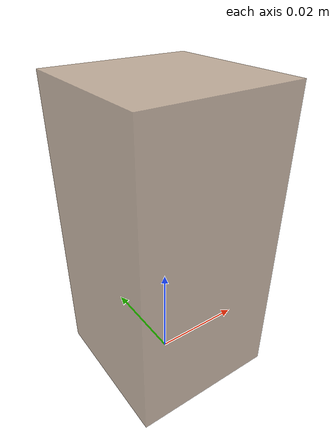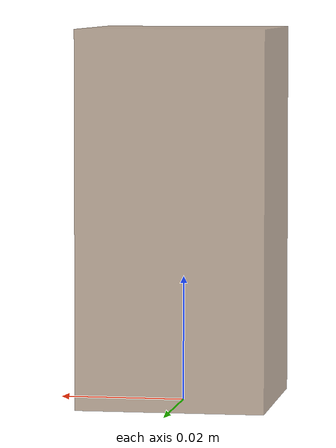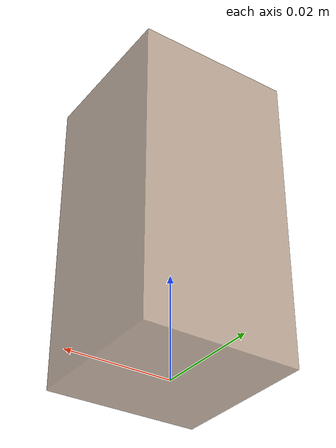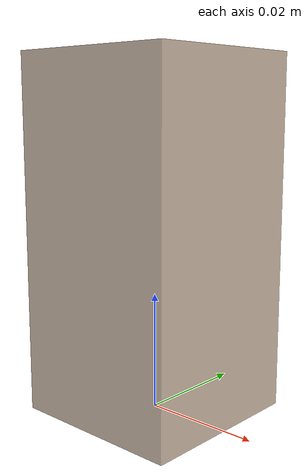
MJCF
<mujoco model="cube_model">
  <compiler angle="radian" coordinate="local"/>
  <option gravity="0 0 -9.81"/>

  <worldbody>
    <!-- 定義一個 box，大小為 (0.03, 0.03, 0.06)/2 米 -->
    <body>
      <body name="object">
        <geom name="brown_cube"
              type="box"
              size="0.015 0.015 0.03"
              rgba="0.65 0.54 0.44 0.7"
              pos="0 0 0.03"
              contype="1"
              conaffinity="1"/>
        </body>
        <site rgba="0 0 0 0" size="0.005" pos="1.8000000023832283e-09 0.0001579002000000018 -0.03245274" name="bottom_site"/>
        <site rgba="0 0 0 0" size="0.005" pos="1.8000000023832283e-09 0.0001579002000000018 0.033050489999999995" name="top_site"/>
        <site rgba="0 0 0 0" size="0.005" pos="0.05891761439999999 0.057567376799999986 0.0002988749999999995" name="horizontal_radius_site"/>
      </body>
  </worldbody>
</mujoco>
